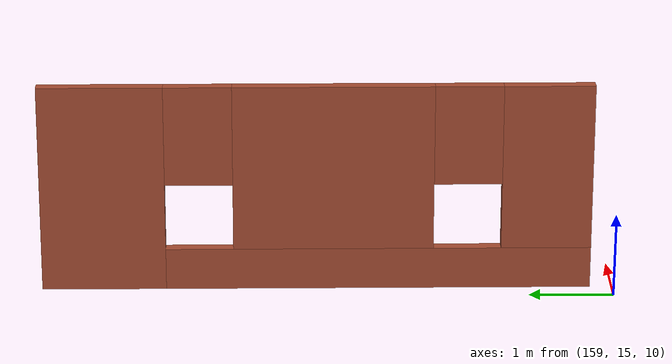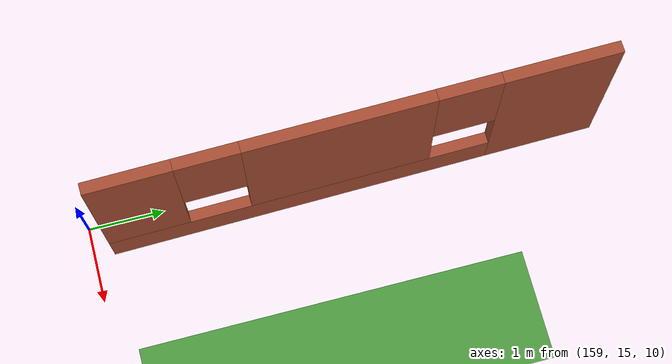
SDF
<sdf version="1.7">
 <world name="default">
  <model name="ground_plane">
   <static>1</static>
   <link name="link">
    <collision name="collision">
     <geometry><plane><normal>0 0 1</normal><size>100 100</size></plane></geometry>
     <surface>
      <contact><collide_bitmask>65535</collide_bitmask></contact>
      <friction><ode><mu>100</mu><mu2>50</mu2></ode></friction>
     </surface>
    </collision>
    <visual name="grass">
     <pose>0 0 -0.1 0 -0 0</pose>
     <cast_shadows>0</cast_shadows>
     <geometry><plane><normal>0 0 1</normal><size>1000 1000</size></plane></geometry>
     <material>
      <script><uri>file://media/materials/scripts/gazebo.material</uri><name>Gazebo/Grass</name></script>
     </material>
    </visual>
   </link>
  </model>
  <model name="asphalt_plane">
   <static>1</static>
   <link name="link">
    <collision name="collision"><geometry><box><size>20 20 0.1</size></box></geometry></collision>
    <visual name="visual">
     <cast_shadows>0</cast_shadows>
     <geometry><box><size>20 20 0.1</size></box></geometry>
     <material>
      <script>
       <uri>model://asphalt_plane/materials/scripts</uri>
       <uri>model://asphalt_plane/materials/textures</uri>
       <name>vrc/asphalt</name>
      </script>
     </material>
    </visual>
   </link>
   <pose>26.7323 45.4974 0 0 -0 0</pose>
  </model>
  <model name="my_building_1_clone">
   <link name="Wall_89">
    <pose>-4.12557 6.05 10 0 -0 3.14159</pose>
    <visual name="Wall_89_Visual_5">
     <pose>1.78441 0 1.9 0 -0 0</pose>
     <geometry><box><size>0.8 0.15 1.2</size></box></geometry>
     <material>
      <script><uri>file://media/materials/scripts/gazebo.material</uri><name>Gazebo/Bricks</name></script>
      <ambient>1 1 1 1</ambient>
      <shader type="pixel"/>
     </material>
     <meta><layer>4</layer></meta>
    </visual>
    <visual name="Wall_89_Visual_2">
     <pose>0.201698 0 1.5 0 -0 0</pose>
     <geometry><box><size>2.36542 0.15 2</size></box></geometry>
     <material>
      <script><uri>file://media/materials/scripts/gazebo.material</uri><name>Gazebo/Bricks</name></script>
      <ambient>1 1 1 1</ambient>
      <shader type="pixel"/>
     </material>
     <meta><layer>4</layer></meta>
    </visual>
    <visual name="Wall_89_Visual_4">
     <pose>-1.38101 0 1.9 0 -0 0</pose>
     <geometry><box><size>0.8 0.15 1.2</size></box></geometry>
     <material>
      <script><uri>file://media/materials/scripts/gazebo.material</uri><name>Gazebo/Bricks</name></script>
      <ambient>1 1 1 1</ambient>
      <shader type="pixel"/>
     </material>
     <meta><layer>4</layer></meta>
    </visual>
    <visual name="Wall_89_Visual_3">
     <pose>2.7172 0 1.5 0 -0 0</pose>
     <geometry><box><size>1.06559 0.15 2</size></box></geometry>
     <material>
      <script><uri>file://media/materials/scripts/gazebo.material</uri><name>Gazebo/Bricks</name></script>
      <ambient>1 1 1 1</ambient>
      <shader type="pixel"/>
     </material>
     <meta><layer>4</layer></meta>
    </visual>
    <visual name="Wall_89_Visual_0">
     <pose>-2.51551 0 1.25 0 -0 0</pose>
     <geometry><box><size>1.46899 0.15 2.5</size></box></geometry>
     <material>
      <script><uri>file://media/materials/scripts/gazebo.material</uri><name>Gazebo/Bricks</name></script>
      <ambient>1 1 1 1</ambient>
      <shader type="pixel"/>
     </material>
     <meta><layer>4</layer></meta>
    </visual>
    <visual name="Wall_89_Visual_1">
     <pose>0.734493 0 0.25 0 -0 0</pose>
     <geometry><box><size>5.03101 0.15 0.5</size></box></geometry>
     <material>
      <script><uri>file://media/materials/scripts/gazebo.material</uri><name>Gazebo/Bricks</name></script>
      <ambient>1 1 1 1</ambient>
      <shader type="pixel"/>
     </material>
     <meta><layer>4</layer></meta>
    </visual>
    <collision name="Wall_89_Collision_5">
     <pose>1.78441 0 1.9 0 -0 0</pose>
     <geometry><box><size>0.8 0.15 1.2</size></box></geometry>
     <surface>
      <friction>
       <ode><mu>1</mu><mu2>1</mu2><fdir1>0 0 0</fdir1><slip1>0</slip1><slip2>0</slip2></ode>
       <torsional>
        <coefficient>1</coefficient>
        <patch_radius>0</patch_radius>
        <surface_radius>0</surface_radius>
        <use_patch_radius>1</use_patch_radius>
        <ode><slip>0</slip></ode>
       </torsional>
      </friction>
      <bounce><restitution_coefficient>0</restitution_coefficient><threshold>1e+06</threshold></bounce>
      <contact>
       <collide_without_contact>0</collide_without_contact>
       <collide_without_contact_bitmask>1</collide_without_contact_bitmask>
       <collide_bitmask>1</collide_bitmask>
       <ode>
        <soft_cfm>0</soft_cfm>
        <soft_erp>0.2</soft_erp>
        <kp>1e+13</kp>
        <kd>1</kd>
        <max_vel>0.01</max_vel>
        <min_depth>0</min_depth>
       </ode>
       <bullet>
        <split_impulse>1</split_impulse>
        <split_impulse_penetration_threshold>-0.01</split_impulse_penetration_threshold>
        <soft_cfm>0</soft_cfm>
        <soft_erp>0.2</soft_erp>
        <kp>1e+13</kp>
        <kd>1</kd>
       </bullet>
      </contact>
     </surface>
    </collision>
    <collision name="Wall_89_Collision_4">
     <pose>-1.38101 0 1.9 0 -0 0</pose>
     <geometry><box><size>0.8 0.15 1.2</size></box></geometry>
     <surface>
      <friction>
       <ode><mu>1</mu><mu2>1</mu2><fdir1>0 0 0</fdir1><slip1>0</slip1><slip2>0</slip2></ode>
       <torsional>
        <coefficient>1</coefficient>
        <patch_radius>0</patch_radius>
        <surface_radius>0</surface_radius>
        <use_patch_radius>1</use_patch_radius>
        <ode><slip>0</slip></ode>
       </torsional>
      </friction>
      <bounce><restitution_coefficient>0</restitution_coefficient><threshold>1e+06</threshold></bounce>
      <contact>
       <collide_without_contact>0</collide_without_contact>
       <collide_without_contact_bitmask>1</collide_without_contact_bitmask>
       <collide_bitmask>1</collide_bitmask>
       <ode>
        <soft_cfm>0</soft_cfm>
        <soft_erp>0.2</soft_erp>
        <kp>1e+13</kp>
        <kd>1</kd>
        <max_vel>0.01</max_vel>
        <min_depth>0</min_depth>
       </ode>
       <bullet>
        <split_impulse>1</split_impulse>
        <split_impulse_penetration_threshold>-0.01</split_impulse_penetration_threshold>
        <soft_cfm>0</soft_cfm>
        <soft_erp>0.2</soft_erp>
        <kp>1e+13</kp>
        <kd>1</kd>
       </bullet>
      </contact>
     </surface>
    </collision>
    <collision name="Wall_89_Collision_1">
     <pose>0.734493 0 0.25 0 -0 0</pose>
     <geometry><box><size>5.03101 0.15 0.5</size></box></geometry>
     <surface>
      <friction>
       <ode><mu>1</mu><mu2>1</mu2><fdir1>0 0 0</fdir1><slip1>0</slip1><slip2>0</slip2></ode>
       <torsional>
        <coefficient>1</coefficient>
        <patch_radius>0</patch_radius>
        <surface_radius>0</surface_radius>
        <use_patch_radius>1</use_patch_radius>
        <ode><slip>0</slip></ode>
       </torsional>
      </friction>
      <bounce><restitution_coefficient>0</restitution_coefficient><threshold>1e+06</threshold></bounce>
      <contact>
       <collide_without_contact>0</collide_without_contact>
       <collide_without_contact_bitmask>1</collide_without_contact_bitmask>
       <collide_bitmask>1</collide_bitmask>
       <ode>
        <soft_cfm>0</soft_cfm>
        <soft_erp>0.2</soft_erp>
        <kp>1e+13</kp>
        <kd>1</kd>
        <max_vel>0.01</max_vel>
        <min_depth>0</min_depth>
       </ode>
       <bullet>
        <split_impulse>1</split_impulse>
        <split_impulse_penetration_threshold>-0.01</split_impulse_penetration_threshold>
        <soft_cfm>0</soft_cfm>
        <soft_erp>0.2</soft_erp>
        <kp>1e+13</kp>
        <kd>1</kd>
       </bullet>
      </contact>
     </surface>
    </collision>
    <collision name="Wall_89_Collision_0">
     <pose>-2.51551 0 1.25 0 -0 0</pose>
     <geometry><box><size>1.46899 0.15 2.5</size></box></geometry>
     <surface>
      <friction>
       <ode><mu>1</mu><mu2>1</mu2><fdir1>0 0 0</fdir1><slip1>0</slip1><slip2>0</slip2></ode>
       <torsional>
        <coefficient>1</coefficient>
        <patch_radius>0</patch_radius>
        <surface_radius>0</surface_radius>
        <use_patch_radius>1</use_patch_radius>
        <ode><slip>0</slip></ode>
       </torsional>
      </friction>
      <bounce><restitution_coefficient>0</restitution_coefficient><threshold>1e+06</threshold></bounce>
      <contact>
       <collide_without_contact>0</collide_without_contact>
       <collide_without_contact_bitmask>1</collide_without_contact_bitmask>
       <collide_bitmask>1</collide_bitmask>
       <ode>
        <soft_cfm>0</soft_cfm>
        <soft_erp>0.2</soft_erp>
        <kp>1e+13</kp>
        <kd>1</kd>
        <max_vel>0.01</max_vel>
        <min_depth>0</min_depth>
       </ode>
       <bullet>
        <split_impulse>1</split_impulse>
        <split_impulse_penetration_threshold>-0.01</split_impulse_penetration_threshold>
        <soft_cfm>0</soft_cfm>
        <soft_erp>0.2</soft_erp>
        <kp>1e+13</kp>
        <kd>1</kd>
       </bullet>
      </contact>
     </surface>
    </collision>
    <collision name="Wall_89_Collision_2">
     <pose>0.201698 0 1.5 0 -0 0</pose>
     <geometry><box><size>2.36542 0.15 2</size></box></geometry>
     <surface>
      <friction>
       <ode><mu>1</mu><mu2>1</mu2><fdir1>0 0 0</fdir1><slip1>0</slip1><slip2>0</slip2></ode>
       <torsional>
        <coefficient>1</coefficient>
        <patch_radius>0</patch_radius>
        <surface_radius>0</surface_radius>
        <use_patch_radius>1</use_patch_radius>
        <ode><slip>0</slip></ode>
       </torsional>
      </friction>
      <bounce><restitution_coefficient>0</restitution_coefficient><threshold>1e+06</threshold></bounce>
      <contact>
       <collide_without_contact>0</collide_without_contact>
       <collide_without_contact_bitmask>1</collide_without_contact_bitmask>
       <collide_bitmask>1</collide_bitmask>
       <ode>
        <soft_cfm>0</soft_cfm>
        <soft_erp>0.2</soft_erp>
        <kp>1e+13</kp>
        <kd>1</kd>
        <max_vel>0.01</max_vel>
        <min_depth>0</min_depth>
       </ode>
       <bullet>
        <split_impulse>1</split_impulse>
        <split_impulse_penetration_threshold>-0.01</split_impulse_penetration_threshold>
        <soft_cfm>0</soft_cfm>
        <soft_erp>0.2</soft_erp>
        <kp>1e+13</kp>
        <kd>1</kd>
       </bullet>
      </contact>
     </surface>
    </collision>
    <collision name="Wall_89_Collision_3">
     <pose>2.7172 0 1.5 0 -0 0</pose>
     <geometry><box><size>1.06559 0.15 2</size></box></geometry>
     <surface>
      <friction>
       <ode><mu>1</mu><mu2>1</mu2><fdir1>0 0 0</fdir1><slip1>0</slip1><slip2>0</slip2></ode>
       <torsional>
        <coefficient>1</coefficient>
        <patch_radius>0</patch_radius>
        <surface_radius>0</surface_radius>
        <use_patch_radius>1</use_patch_radius>
        <ode><slip>0</slip></ode>
       </torsional>
      </friction>
      <bounce><restitution_coefficient>0</restitution_coefficient><threshold>1e+06</threshold></bounce>
      <contact>
       <collide_without_contact>0</collide_without_contact>
       <collide_without_contact_bitmask>1</collide_without_contact_bitmask>
       <collide_bitmask>1</collide_bitmask>
       <ode>
        <soft_cfm>0</soft_cfm>
        <soft_erp>0.2</soft_erp>
        <kp>1e+13</kp>
        <kd>1</kd>
        <max_vel>0.01</max_vel>
        <min_depth>0</min_depth>
       </ode>
       <bullet>
        <split_impulse>1</split_impulse>
        <split_impulse_penetration_threshold>-0.01</split_impulse_penetration_threshold>
        <soft_cfm>0</soft_cfm>
        <soft_erp>0.2</soft_erp>
        <kp>1e+13</kp>
        <kd>1</kd>
       </bullet>
      </contact>
     </surface>
    </collision>
   </link>
   <static>1</static>
   <pose>165.249 22.7467 0 0 -0 1.58902</pose>
  </model>
 </world>
</sdf>
